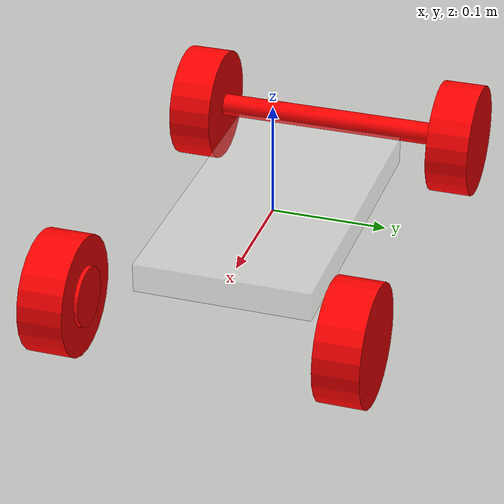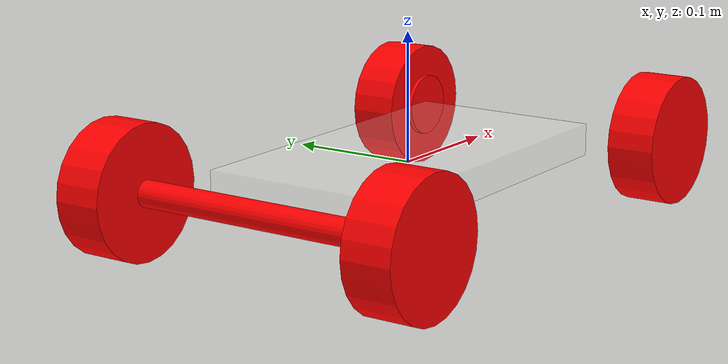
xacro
<?xml version="1.0"?>
<robot xmlns:xacro="http://www.ros.org/wiki/xacro" name="robot_name">

    <xacro:macro name="default_inertial" params="mass">
        <inertial>
            <mass value="${mass}" />
            <inertia ixx="1.0" ixy="0.0" ixz="0.0" iyy="1.0" iyz="0.0" izz="1.0" />
        </inertial>
    </xacro:macro>

    <!-- Base Link -->
  <link name="base_link">
    <visual>
      <geometry>
        <box size="0.2794 0.1524 0.0254"/>
      </geometry>
      <material>
        <color rgba="1 1 1 0.2"/>
      </material>
    </visual>
    <collision>
      <geometry>
        <box size="0.2794 0.1524 0.0254"/>
      </geometry>
    </collision>
    <xacro:default_inertial mass="100"/>
  </link>

    <!-- front_left_wheel_assembly -->

    <!-- front left wheel hub -->
    <link name="left_hub_link">
        <visual name="">
            <origin xyz="0.0 0.0 0.0" rpy="1.57079632679 0.0 0.0"/>
            <geometry>
                <cylinder radius="0.0254" length="0.005"/>
            </geometry>
            <material name="">
                <color rgba="1.0 0.0 0.0 1.0"/>
                <texture filename=""/>
            </material>
        </visual>
        <collision>
            <origin xyz="0.0 0.0 0.0" rpy="0.0 0.0 0.0"/>
            <geometry>
                <cylinder radius="0.0254" length="0.005"/>
            </geometry>
        </collision>
        <xacro:default_inertial mass="4"/>
    </link>

    <joint name="left_stear_joint" type="revolute">
        <origin xyz="0.1778 0.1016 0.0" rpy="0.0 0.0 0"/>
        <parent link="base_link"/>
        <child link="left_hub_link"/>
        <axis xyz="0.0 0.0 1"/>
        <limit lower="-0.55" upper="0.55" effort="0.0" velocity="0.0"/>
    </joint>

    <!-- front left wheel -->
    <link name="front_left_wheel_link">
        <visual name="">
            <origin xyz="0.0 0.0 0.0" rpy="1.57079632679 0.0 0.0"/>
            <geometry>
                <cylinder radius="0.0508" length="0.0381"/>
            </geometry>
            <material name="">
                <color rgba="1.0 0.0 0.0 1.0"/>
                <texture filename=""/>
            </material>
        </visual>
        <collision>
            <origin xyz="0.0 0.0 0.0" rpy="0.0 0.0 0.0"/>
            <geometry>
                <cylinder radius="0.0508" length="0.0381"/>
            </geometry>
        </collision>
        <xacro:default_inertial mass="3"/>
    </link>

    <joint name="front_left_wheel_joint" type="continuous">
        <origin xyz="0.0 0.02 0.0" rpy="0.0 0.0 0.0"/>
        <parent link="left_hub_link"/>
        <child link="front_left_wheel_link"/>
        <axis xyz="0.0 1 0.0"/>
        <limit lower="0.0" upper="0.0" effort="0.0" velocity="0.0"/>
    </joint>

    <!-- front right wheel hub -->
    <link name="right_hub_link">
        <visual name="">
            <origin xyz="0.0 0.0 0.0" rpy="1.57079632679 0.0 0.0"/>
            <geometry>
                <cylinder radius="0.0254" length="0.005"/>
            </geometry>
            <material name="">
                <color rgba="1.0 0.0 0.0 1.0"/>
                <texture filename=""/>
            </material>
        </visual>
        <collision>
            <origin xyz="0.0 0.0 0.0" rpy="0.0 0.0 0.0"/>
            <geometry>
                <cylinder radius="0.0254" length="0.005"/>
            </geometry>
        </collision>
        <xacro:default_inertial mass="4"/>
    </link>

    <joint name="right_stear_joint" type="revolute">
        <origin xyz="0.1778 -0.1016 0.0" rpy="0.0 0.0 0"/>
        <parent link="base_link"/>
        <child link="right_hub_link"/>
        <axis xyz="0.0 0.0 1"/>
        <limit lower="-0.55" upper="0.55" effort="0.0" velocity="0.0"/>
    </joint>

    <!-- front right wheel -->
    <link name="front_right_wheel_link">
        <visual name="">
            <origin xyz="0.0 0.0 0.0" rpy="1.57079632679 0.0 0.0"/>
            <geometry>
                <cylinder radius="0.0508" length="0.0381"/>
            </geometry>
            <material name="">
                <color rgba="1.0 0.0 0.0 1.0"/>
                <texture filename=""/>
            </material>
        </visual>
        <collision>
            <origin xyz="0.0 0.0 0.0" rpy="0.0 0.0 0.0"/>
            <geometry>
                <cylinder radius="0.0508" length="0.0381"/>
            </geometry>
        </collision>
        <xacro:default_inertial mass="3"/>
    </link>

    <joint name="front_right_wheel_joint" type="continuous">
        <origin xyz="0.0 -0.02 0.0" rpy="0.0 0.0 0.0"/>
        <parent link="right_hub_link"/>
        <child link="front_right_wheel_link"/>
        <axis xyz="0.0 1 0.0"/>
        <limit lower="0.0" upper="0.0" effort="0.0" velocity="0.0"/>
    </joint>

    <!-- back_wheel_axil -->
    <link name="back_axil_link">
        <visual name="">
            <origin xyz="0 0 0" rpy="1.57079632679 0.0 0.0"/>
            <geometry>
                <cylinder radius="0.01" length="0.2432"/>
            </geometry>
            <material name="">
                <color rgba="1.0 0.0 0.0 1.0"/>
                <texture filename=""/>
            </material>
        </visual>
        <collision>
            <origin xyz="0 0 0" rpy="1.57079632679 0.0 0.0"/>
            <geometry>
                <box size="0.0 0.0 0.0"/>
            </geometry>
        </collision>
    </link>

    <joint name="back_axil_joint" type="continuous">
        <origin xyz="-0.1778 0.0 0.0" rpy="0.0 0.0 0.0"/>
        <parent link="base_link"/>
        <child link="back_axil_link"/>
        <axis xyz="0.0 1 0.0"/>
        <limit lower="0.0" upper="0.0" effort="0.0" velocity="0.0"/>
    </joint>

    <!-- rear left wheel -->
    <link name="rear_left_wheel_link">
        <visual name="">
            <origin xyz="0.0 0.0 0.0" rpy="1.57079632679 0.0 0.0"/>
            <geometry>
                <cylinder radius="0.0508" length="0.0381"/>
            </geometry>
            <material name="">
                <color rgba="1.0 0.0 0.0 1.0"/>
                <texture filename=""/>
            </material>
        </visual>
        <collision>
            <origin xyz="0.0 0.0 0.0" rpy="0.0 0.0 0.0"/>
            <geometry>
                <cylinder radius="0.0508" length="0.0381"/>
            </geometry>
        </collision>
        <xacro:default_inertial mass="3"/>
    </link>

    <joint name="rear_left_wheel_joint" type="continuous">
        <origin xyz="0 0.1216 0.0" rpy="0.0 0.0 0.0"/>
        <parent link="back_axil_link"/>
        <child link="rear_left_wheel_link"/>
        <axis xyz="0.0 1 0.0"/>
    </joint>

    <!-- rear right wheel -->
    <link name="rear_right_wheel_link">
        <visual name="">
            <origin xyz="0.0 0.0 0.0" rpy="1.57079632679 0.0 0.0"/>
            <geometry>
                <cylinder radius="0.0508" length="0.0381"/>
            </geometry>
            <material name="">
                <color rgba="1.0 0.0 0.0 1.0"/>
                <texture filename=""/>
            </material>
        </visual>
        <collision>
            <origin xyz="0.0 0.0 0.0" rpy="0.0 0.0 0.0"/>
            <geometry>
                <cylinder radius="0.0508" length="0.0381"/>
            </geometry>
        </collision>
        <xacro:default_inertial mass="3"/>
    </link>

    <joint name="rear_right_wheel_joint" type="continuous">
        <origin xyz="0 -0.1216 0.0" rpy="0.0 0.0 0.0"/>
        <parent link="back_axil_link"/>
        <child link="rear_right_wheel_link"/>
        <axis xyz="0.0 1 0.0"/>
    </joint>

</robot>
